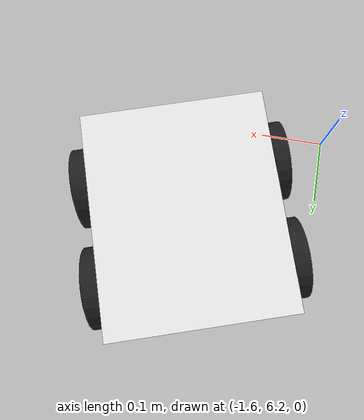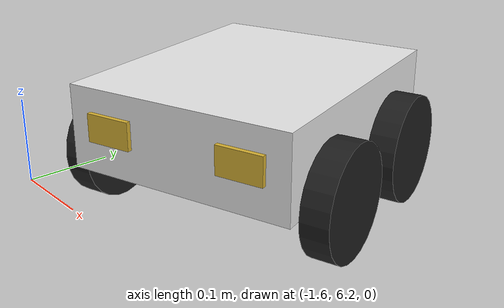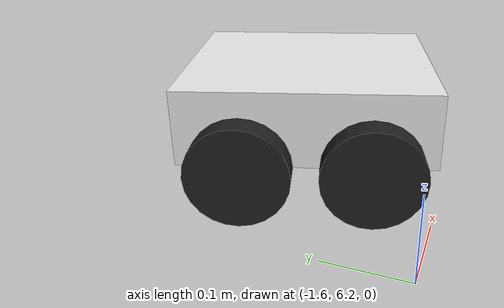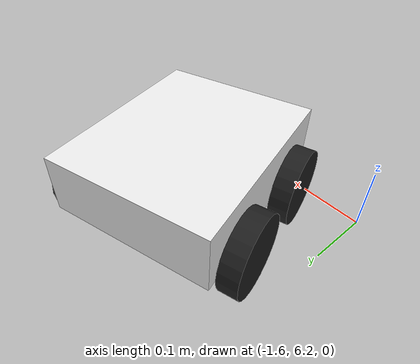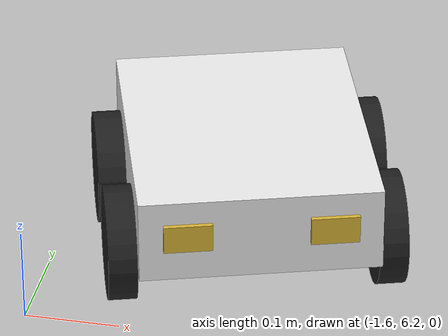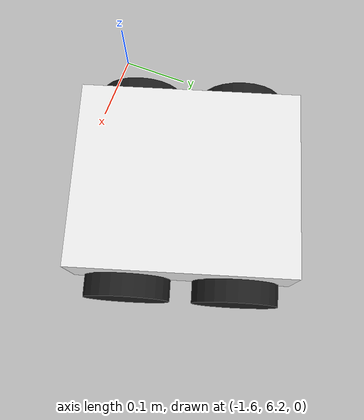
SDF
<sdf version="1.7">
 <world name="world_demo">
  <model name="ground_plane">
   <static>1</static>
   <link name="link">
    <collision name="collision">
     <geometry><plane><normal>0 0 1</normal><size>1 1</size></plane></geometry>
    </collision>
    <inertial>
     <mass>1</mass>
     <inertia><ixx>1</ixx><ixy>0</ixy><ixz>0</ixz><iyy>1</iyy><iyz>0</iyz><izz>1</izz></inertia>
    </inertial>
   </link>
  </model>
  <model name="my_robot">
   <link name="base_footprint">
    <inertial>
     <pose>0.0375 0 0.0825 0 -0 0</pose>
     <mass>20</mass>
     <inertia>
      <ixx>0.297625</ixx>
      <ixy>0</ixy>
      <ixz>0.016875</ixz>
      <iyy>0.115083</iyy>
      <iyz>-1.16852e-18</iyz>
      <izz>0.360958</izz>
     </inertia>
    </inertial>
    <collision name="base_footprint_fixed_joint_lump__base_link_collision">
     <pose>0 0 0.105 0 -0 0</pose>
     <geometry><box><size>0.3 0.25 0.09</size></box></geometry>
    </collision>
    <collision name="base_footprint_fixed_joint_lump__left_camera_link_collision_1">
     <pose>0.1525 0.075 0.11 0 -0 0</pose>
     <geometry><box><size>0.005 0.05 0.03</size></box></geometry>
    </collision>
    <collision name="base_footprint_fixed_joint_lump__left_wheel_front_link_collision_2">
     <pose>0.075 0.14 0.06 1.5708 -0 0</pose>
     <geometry><cylinder><length>0.03</length><radius>0.06</radius></cylinder></geometry>
     <surface><friction><ode><mu>0</mu><mu2>0</mu2></ode></friction></surface>
    </collision>
    <collision name="base_footprint_fixed_joint_lump__right_camera_link_collision_3">
     <pose>0.1525 -0.075 0.11 0 -0 0</pose>
     <geometry><box><size>0.005 0.05 0.03</size></box></geometry>
    </collision>
    <collision name="base_footprint_fixed_joint_lump__right_wheel_front_link_collision_4">
     <pose>0.075 -0.14 0.06 1.5708 -0 0</pose>
     <geometry><cylinder><length>0.03</length><radius>0.06</radius></cylinder></geometry>
     <surface><friction><ode><mu>0</mu><mu2>0</mu2></ode></friction></surface>
    </collision>
    <visual name="base_footprint_fixed_joint_lump__base_link_visual">
     <pose>0 0 0.105 0 -0 0</pose>
     <geometry><box><size>0.3 0.25 0.09</size></box></geometry>
     <material>
      <script><name>Gazebo/White</name><uri>file://media/materials/scripts/gazebo.material</uri></script>
     </material>
    </visual>
    <visual name="base_footprint_fixed_joint_lump__left_camera_link_visual_1">
     <pose>0.1525 0.075 0.11 0 -0 0</pose>
     <geometry><box><size>0.005 0.05 0.03</size></box></geometry>
     <material>
      <script><name>Gazebo/Gold</name><uri>file://media/materials/scripts/gazebo.material</uri></script>
     </material>
    </visual>
    <visual name="base_footprint_fixed_joint_lump__left_wheel_front_link_visual_2">
     <pose>0.075 0.14 0.06 1.5708 -0 0</pose>
     <geometry><cylinder><length>0.03</length><radius>0.06</radius></cylinder></geometry>
     <material>
      <script><name>Gazebo/Black</name><uri>file://media/materials/scripts/gazebo.material</uri></script>
     </material>
    </visual>
    <visual name="base_footprint_fixed_joint_lump__right_camera_link_visual_3">
     <pose>0.1525 -0.075 0.11 0 -0 0</pose>
     <geometry><box><size>0.005 0.05 0.03</size></box></geometry>
     <material>
      <script><name>Gazebo/Gold</name><uri>file://media/materials/scripts/gazebo.material</uri></script>
     </material>
    </visual>
    <visual name="base_footprint_fixed_joint_lump__right_wheel_front_link_visual_4">
     <pose>0.075 -0.14 0.06 1.5708 -0 0</pose>
     <geometry><cylinder><length>0.03</length><radius>0.06</radius></cylinder></geometry>
     <material>
      <script><name>Gazebo/Black</name><uri>file://media/materials/scripts/gazebo.material</uri></script>
     </material>
    </visual>
    <sensor name="left_camera_sensor" type="camera">
     <visualize>1</visualize>
     <update_rate>15</update_rate>
     <camera>
      <horizontal_fov>2.0944</horizontal_fov>
      <image><width>752</width><height>480</height><format>R8G8B8</format></image>
      <clip><near>0.1</near><far>100</far></clip>
      <distortion><k1>0</k1><k2>0</k2><k3>0</k3><p1>0</p1><p2>0</p2><center>376.5 240.5</center></distortion>
      <intrinsics><fx>217.08247</fx><fy>217.08247</fy><cx>376.5</cx><cy>240.5</cy></intrinsics>
     </camera>
     <plugin name="left_camera_controller" filename="libgazebo_ros_camera.so">
      <frame_name>left_camera_optical_link</frame_name>
      <camera_name>left_camera</camera_name>
      <image_width>752</image_width>
      <image_height>480</image_height>
      <ros>
       <namespace>/camera/left</namespace>
       <remapping>image_raw:=image</remapping>
       <parameter name="publish_image">1</parameter>
       <parameter name="publish_compressed">0</parameter>
       <parameter name="publish_depth">0</parameter>
       <parameter name="disable_pub_plugins">["compressed", "compressedDepth", "theora"]</parameter>
      </ros>
     </plugin>
     <pose>0.1525 0.075 0.11 0 -0 0</pose>
    </sensor>
    <sensor name="right_camera_sensor" type="camera">
     <visualize>1</visualize>
     <update_rate>15</update_rate>
     <camera>
      <horizontal_fov>2.0944</horizontal_fov>
      <image><width>752</width><height>480</height><format>R8G8B8</format></image>
      <clip><near>0.1</near><far>100</far></clip>
      <distortion><k1>0</k1><k2>0</k2><k3>0</k3><p1>0</p1><p2>0</p2><center>376.5 240.5</center></distortion>
      <intrinsics><fx>217.08247</fx><fy>217.08247</fy><cx>376.5</cx><cy>240.5</cy></intrinsics>
     </camera>
     <plugin name="right_camera_controller" filename="libgazebo_ros_camera.so">
      <frame_name>right_camera_optical_link</frame_name>
      <camera_name>right_camera</camera_name>
      <image_width>752</image_width>
      <image_height>480</image_height>
      <ros>
       <namespace>/camera/right</namespace>
       <remapping>image_raw:=image</remapping>
       <parameter name="publish_image">1</parameter>
       <parameter name="publish_compressed">0</parameter>
       <parameter name="publish_depth">0</parameter>
       <parameter name="disable_pub_plugins">["compressed", "compressedDepth", "theora"]</parameter>
      </ros>
     </plugin>
     <pose>0.1525 -0.075 0.11 0 -0 0</pose>
    </sensor>
   </link>
   <joint name="base_left_wheel_back_joint" type="revolute">
    <pose relative_to="base_footprint">-0.075 0.14 0.06 0 -0 0</pose>
    <parent>base_footprint</parent>
    <child>left_wheel_back_link</child>
    <axis>
     <xyz>0 1 0</xyz>
     <limit><effort>10</effort><velocity>10</velocity><lower>-1e+16</lower><upper>1e+16</upper></limit>
     <dynamics><spring_reference>0</spring_reference><spring_stiffness>0</spring_stiffness></dynamics>
    </axis>
   </joint>
   <link name="left_wheel_back_link">
    <pose relative_to="base_left_wheel_back_joint">0 0 0 0 -0 0</pose>
    <inertial>
     <pose>0 0 0 1.5708 -0 0</pose>
     <mass>5</mass>
     <inertia><ixx>0.004875</ixx><ixy>0</ixy><ixz>0</ixz><iyy>0.004875</iyy><iyz>0</iyz><izz>0.009</izz></inertia>
    </inertial>
    <collision name="left_wheel_back_link_collision">
     <pose>0 0 0 1.5708 -0 0</pose>
     <geometry><cylinder><length>0.03</length><radius>0.06</radius></cylinder></geometry>
    </collision>
    <visual name="left_wheel_back_link_visual">
     <pose>0 0 0 1.5708 -0 0</pose>
     <geometry><cylinder><length>0.03</length><radius>0.06</radius></cylinder></geometry>
     <material>
      <script><name>Gazebo/Black</name><uri>file://media/materials/scripts/gazebo.material</uri></script>
     </material>
    </visual>
   </link>
   <joint name="base_right_wheel_back_joint" type="revolute">
    <pose relative_to="base_footprint">-0.075 -0.14 0.06 0 -0 0</pose>
    <parent>base_footprint</parent>
    <child>right_wheel_back_link</child>
    <axis>
     <xyz>0 1 0</xyz>
     <limit><effort>10</effort><velocity>10</velocity><lower>-1e+16</lower><upper>1e+16</upper></limit>
     <dynamics><spring_reference>0</spring_reference><spring_stiffness>0</spring_stiffness></dynamics>
    </axis>
   </joint>
   <link name="right_wheel_back_link">
    <pose relative_to="base_right_wheel_back_joint">0 0 0 0 -0 0</pose>
    <inertial>
     <pose>0 0 0 1.5708 -0 0</pose>
     <mass>5</mass>
     <inertia><ixx>0.004875</ixx><ixy>0</ixy><ixz>0</ixz><iyy>0.004875</iyy><iyz>0</iyz><izz>0.009</izz></inertia>
    </inertial>
    <collision name="right_wheel_back_link_collision">
     <pose>0 0 0 1.5708 -0 0</pose>
     <geometry><cylinder><length>0.03</length><radius>0.06</radius></cylinder></geometry>
    </collision>
    <visual name="right_wheel_back_link_visual">
     <pose>0 0 0 1.5708 -0 0</pose>
     <geometry><cylinder><length>0.03</length><radius>0.06</radius></cylinder></geometry>
     <material>
      <script><name>Gazebo/Black</name><uri>file://media/materials/scripts/gazebo.material</uri></script>
     </material>
    </visual>
   </link>
   <static>0</static>
   <plugin name="diff_drive_controller" filename="libgazebo_ros_diff_drive.so">
    <update_rate>50</update_rate>
    <left_joint>base_left_wheel_back_joint</left_joint>
    <right_joint>base_right_wheel_back_joint</right_joint>
    <wheel_separation>0.28</wheel_separation>
    <wheel_diameter>0.12</wheel_diameter>
    <publish_odom>1</publish_odom>
    <publish_odom_tf>1</publish_odom_tf>
    <publish_wheel_tf>1</publish_wheel_tf>
    <odometry_topic>odom</odometry_topic>
    <odometry_frame>odom</odometry_frame>
    <robot_base_frame>base_footprint</robot_base_frame>
    <ros><namespace>/</namespace><remapping>cmd_vel:=cmd_vel</remapping><remapping>odom:=odom</remapping></ros>
    <max_wheel_torque>200</max_wheel_torque>
    <max_wheel_acceleration>10.0</max_wheel_acceleration>
    <command_topic>cmd_vel</command_topic>
   </plugin>
   <pose>-1.40323 6.37927 1.1e-05 2.6e-05 7.2e-05 -1.26523</pose>
  </model>
 </world>
</sdf>
